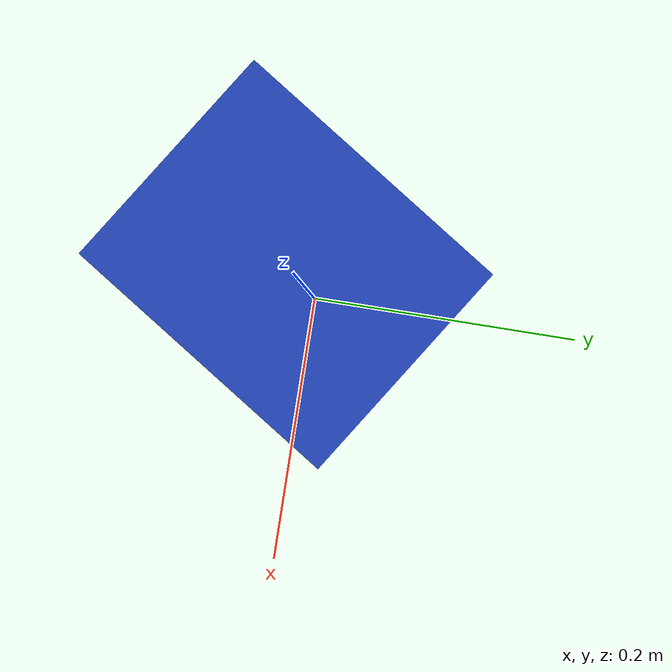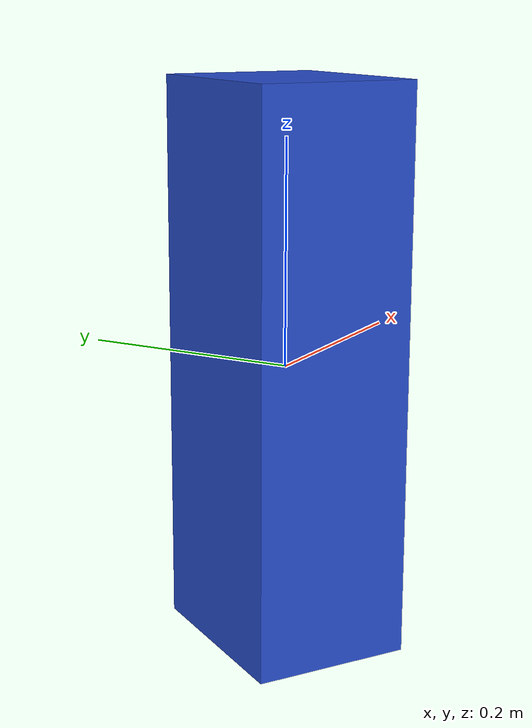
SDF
<sdf version="1.6"><model name="model_4"><link name="link"><pose>0 0 0 0 0 2.565402218211625</pose><gravity>true</gravity><static>true</static><inertial><mass>1.0</mass><inertia><ixx>0.16666</ixx><ixy>0</ixy><ixz>0</ixz><iyy>0.16666</iyy><iyz>0</iyz><izz>0.16666</izz></inertia></inertial><collision name="collision"><geometry><box><size>0.14198748453910284 0.17496567574391164 0.5</size></box></geometry></collision><visual name="visual"><geometry><box><size>0.14198748453910284 0.17496567574391164 0.5</size></box></geometry><material><script><name>Gazebo/Blue</name><uri>file://media/materials/scripts/gazebo.material</uri></script></material></visual></link></model></sdf>
